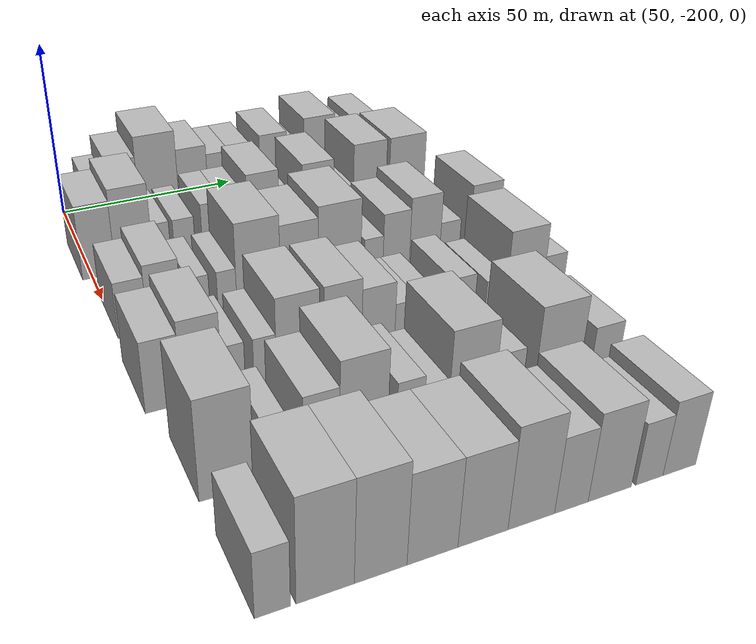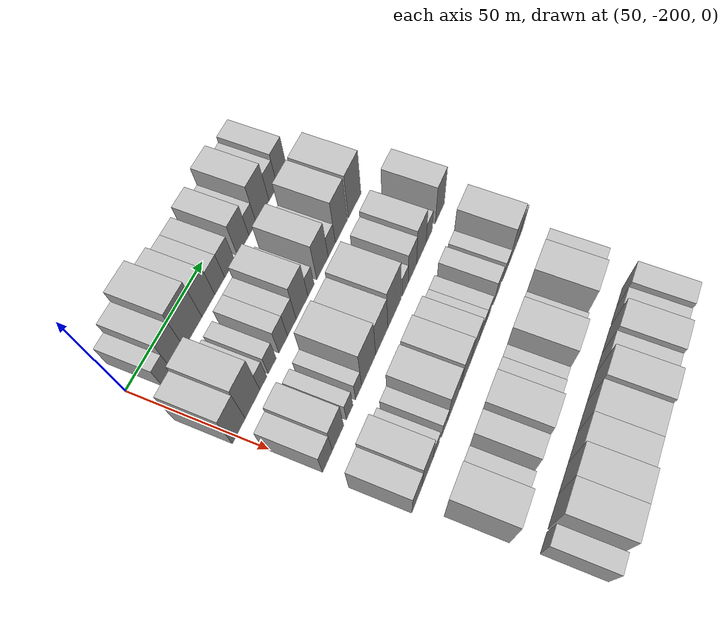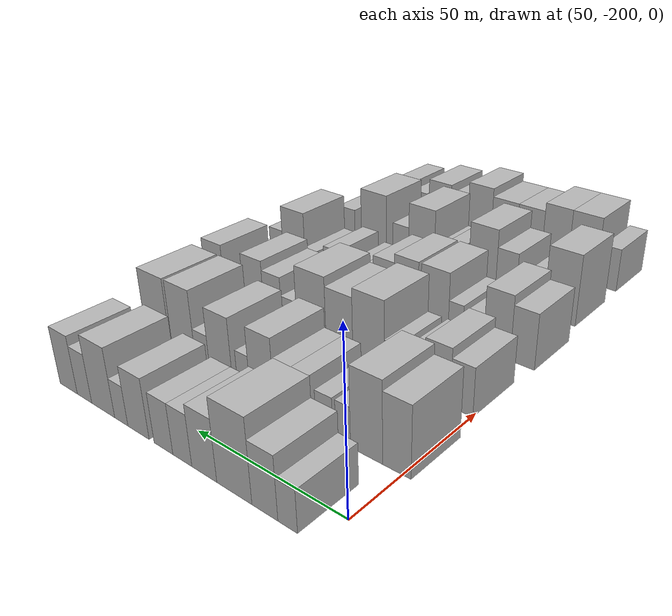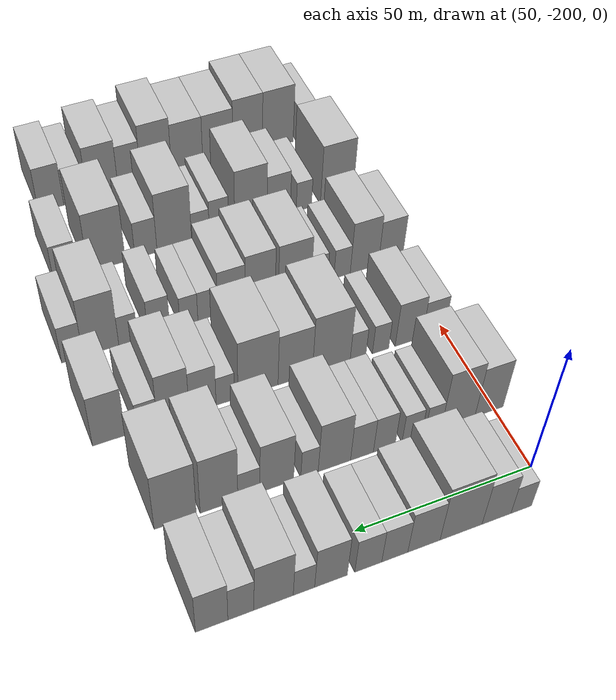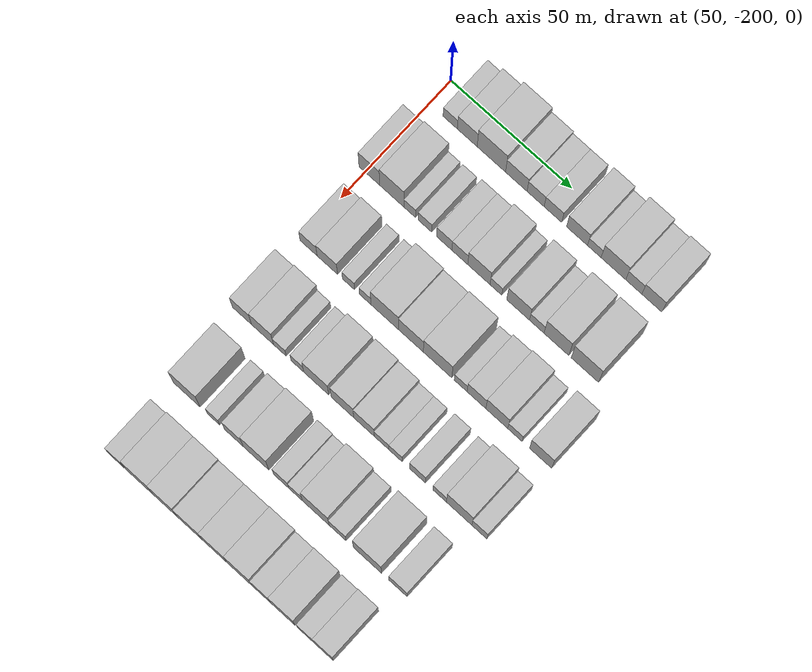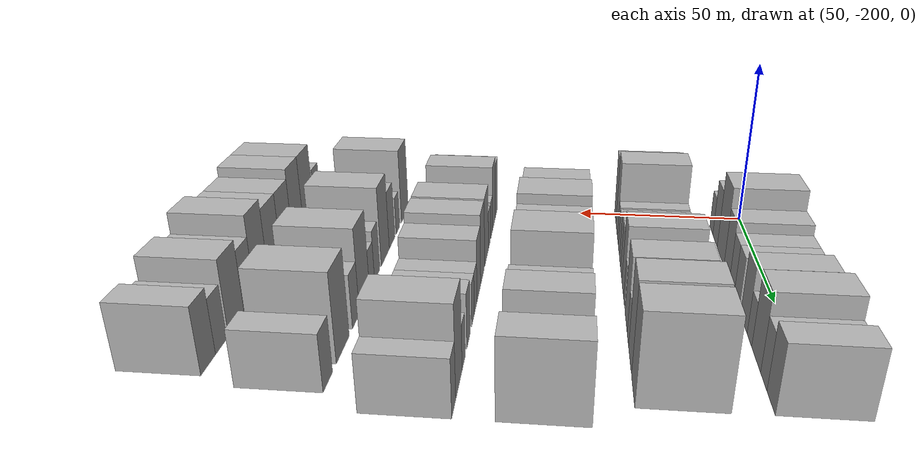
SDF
<sdf version="1.6">
 <world name="default">
  <model name="building_37">
   <static>1</static>
   <pose>50.0000 -191.3169 0 0.000000 0.000000 0.000000</pose>
   <link name="link">
    <pose>0 0 6.00 0 0 0</pose>
    <collision name="collision"><geometry><box><size>20.0000 5.9340 12.0000</size></box></geometry></collision>
    <visual name="visual">
     <cast_shadows>0</cast_shadows>
     <geometry><box><size>20.0000 5.9340 12.0000</size></box></geometry>
     <material>
      <script>
       <uri>model://HANNAS_wall/materials/scripts</uri>
       <uri>model://HANNAS_wall/materials/textures</uri>
       <name>vrc/HANNAS_wall</name>
      </script>
     </material>
    </visual>
   </link>
  </model>
  <model name="building_38">
   <static>1</static>
   <pose>50.0000 -184.2565 0 0.000000 0.000000 0.000000</pose>
   <link name="link">
    <pose>0 0 9.00 0 0 0</pose>
    <collision name="collision"><geometry><box><size>20.0000 8.1869 18.0000</size></box></geometry></collision>
    <visual name="visual">
     <cast_shadows>0</cast_shadows>
     <geometry><box><size>20.0000 8.1869 18.0000</size></box></geometry>
     <material>
      <script>
       <uri>model://HANNAS_wall/materials/scripts</uri>
       <uri>model://HANNAS_wall/materials/textures</uri>
       <name>vrc/HANNAS_wall</name>
      </script>
     </material>
    </visual>
   </link>
  </model>
  <model name="building_39">
   <static>1</static>
   <pose>50.0000 -174.2927 0 0.000000 0.000000 0.000000</pose>
   <link name="link">
    <pose>0 0 12.00 0 0 0</pose>
    <collision name="collision"><geometry><box><size>20.0000 11.7407 24.0000</size></box></geometry></collision>
    <visual name="visual">
     <cast_shadows>0</cast_shadows>
     <geometry><box><size>20.0000 11.7407 24.0000</size></box></geometry>
     <material>
      <script>
       <uri>model://HANNAS_wall/materials/scripts</uri>
       <uri>model://HANNAS_wall/materials/textures</uri>
       <name>vrc/HANNAS_wall</name>
      </script>
     </material>
    </visual>
   </link>
  </model>
  <model name="building_40">
   <static>1</static>
   <pose>50.0000 -163.9919 0 0.000000 0.000000 0.000000</pose>
   <link name="link">
    <pose>0 0 9.00 0 0 0</pose>
    <collision name="collision"><geometry><box><size>20.0000 8.8607 18.0000</size></box></geometry></collision>
    <visual name="visual">
     <cast_shadows>0</cast_shadows>
     <geometry><box><size>20.0000 8.8607 18.0000</size></box></geometry>
     <material>
      <script>
       <uri>model://HANNAS_wall/materials/scripts</uri>
       <uri>model://HANNAS_wall/materials/textures</uri>
       <name>vrc/HANNAS_wall</name>
      </script>
     </material>
    </visual>
   </link>
  </model>
  <model name="building_41">
   <static>1</static>
   <pose>50.0000 -156.0389 0 0.000000 0.000000 0.000000</pose>
   <link name="link">
    <pose>0 0 7.50 0 0 0</pose>
    <collision name="collision"><geometry><box><size>20.0000 7.0455 15.0000</size></box></geometry></collision>
    <visual name="visual">
     <cast_shadows>0</cast_shadows>
     <geometry><box><size>20.0000 7.0455 15.0000</size></box></geometry>
     <material>
      <script>
       <uri>model://HANNAS_wall/materials/scripts</uri>
       <uri>model://HANNAS_wall/materials/textures</uri>
       <name>vrc/HANNAS_wall</name>
      </script>
     </material>
    </visual>
   </link>
  </model>
  <model name="building_42">
   <static>1</static>
   <pose>50.0000 -148.9037 0 0.000000 0.000000 0.000000</pose>
   <link name="link">
    <pose>0 0 7.50 0 0 0</pose>
    <collision name="collision"><geometry><box><size>20.0000 7.2249 15.0000</size></box></geometry></collision>
    <visual name="visual">
     <cast_shadows>0</cast_shadows>
     <geometry><box><size>20.0000 7.2249 15.0000</size></box></geometry>
     <material>
      <script>
       <uri>model://HANNAS_wall/materials/scripts</uri>
       <uri>model://HANNAS_wall/materials/textures</uri>
       <name>vrc/HANNAS_wall</name>
      </script>
     </material>
    </visual>
   </link>
  </model>
  <model name="building_43">
   <static>1</static>
   <pose>50.0000 -138.9900 0 0.000000 0.000000 0.000000</pose>
   <link name="link">
    <pose>0 0 9.00 0 0 0</pose>
    <collision name="collision"><geometry><box><size>20.0000 8.6024 18.0000</size></box></geometry></collision>
    <visual name="visual">
     <cast_shadows>0</cast_shadows>
     <geometry><box><size>20.0000 8.6024 18.0000</size></box></geometry>
     <material>
      <script>
       <uri>model://HANNAS_wall/materials/scripts</uri>
       <uri>model://HANNAS_wall/materials/textures</uri>
       <name>vrc/HANNAS_wall</name>
      </script>
     </material>
    </visual>
   </link>
  </model>
  <model name="building_44">
   <static>1</static>
   <pose>50.0000 -131.9040 0 0.000000 0.000000 0.000000</pose>
   <link name="link">
    <pose>0 0 6.00 0 0 0</pose>
    <collision name="collision"><geometry><box><size>20.0000 5.5696 12.0000</size></box></geometry></collision>
    <visual name="visual">
     <cast_shadows>0</cast_shadows>
     <geometry><box><size>20.0000 5.5696 12.0000</size></box></geometry>
     <material>
      <script>
       <uri>model://HANNAS_wall/materials/scripts</uri>
       <uri>model://HANNAS_wall/materials/textures</uri>
       <name>vrc/HANNAS_wall</name>
      </script>
     </material>
    </visual>
   </link>
  </model>
  <model name="building_45">
   <static>1</static>
   <pose>50.0000 -124.0716 0 0.000000 0.000000 0.000000</pose>
   <link name="link">
    <pose>0 0 10.50 0 0 0</pose>
    <collision name="collision"><geometry><box><size>20.0000 10.0952 21.0000</size></box></geometry></collision>
    <visual name="visual">
     <cast_shadows>0</cast_shadows>
     <geometry><box><size>20.0000 10.0952 21.0000</size></box></geometry>
     <material>
      <script>
       <uri>model://HANNAS_wall/materials/scripts</uri>
       <uri>model://HANNAS_wall/materials/textures</uri>
       <name>vrc/HANNAS_wall</name>
      </script>
     </material>
    </visual>
   </link>
  </model>
  <model name="building_46">
   <static>1</static>
   <pose>50.0000 -115.7251 0 0.000000 0.000000 0.000000</pose>
   <link name="link">
    <pose>0 0 7.50 0 0 0</pose>
    <collision name="collision"><geometry><box><size>20.0000 6.5977 15.0000</size></box></geometry></collision>
    <visual name="visual">
     <cast_shadows>0</cast_shadows>
     <geometry><box><size>20.0000 6.5977 15.0000</size></box></geometry>
     <material>
      <script>
       <uri>model://HANNAS_wall/materials/scripts</uri>
       <uri>model://HANNAS_wall/materials/textures</uri>
       <name>vrc/HANNAS_wall</name>
      </script>
     </material>
    </visual>
   </link>
  </model>
  <model name="building_47">
   <static>1</static>
   <pose>50.0000 -108.3571 0 0.000000 0.000000 0.000000</pose>
   <link name="link">
    <pose>0 0 9.00 0 0 0</pose>
    <collision name="collision"><geometry><box><size>20.0000 8.1383 18.0000</size></box></geometry></collision>
    <visual name="visual">
     <cast_shadows>0</cast_shadows>
     <geometry><box><size>20.0000 8.1383 18.0000</size></box></geometry>
     <material>
      <script>
       <uri>model://HANNAS_wall/materials/scripts</uri>
       <uri>model://HANNAS_wall/materials/textures</uri>
       <name>vrc/HANNAS_wall</name>
      </script>
     </material>
    </visual>
   </link>
  </model>
  <model name="building_156">
   <static>1</static>
   <pose>79.0000 -198.3102 0 0.000000 0.000000 0.000000</pose>
   <link name="link">
    <pose>0 0 10.50 0 0 0</pose>
    <collision name="collision"><geometry><box><size>20.0000 8.5785 21.0000</size></box></geometry></collision>
    <visual name="visual">
     <cast_shadows>0</cast_shadows>
     <geometry><box><size>20.0000 8.5785 21.0000</size></box></geometry>
     <material>
      <script>
       <uri>model://HANNAS_wall/materials/scripts</uri>
       <uri>model://HANNAS_wall/materials/textures</uri>
       <name>vrc/HANNAS_wall</name>
      </script>
     </material>
    </visual>
   </link>
  </model>
  <model name="building_157">
   <static>1</static>
   <pose>79.0000 -189.0015 0 0.000000 0.000000 0.000000</pose>
   <link name="link">
    <pose>0 0 12.00 0 0 0</pose>
    <collision name="collision"><geometry><box><size>20.0000 10.0389 24.0000</size></box></geometry></collision>
    <visual name="visual">
     <cast_shadows>0</cast_shadows>
     <geometry><box><size>20.0000 10.0389 24.0000</size></box></geometry>
     <material>
      <script>
       <uri>model://HANNAS_wall/materials/scripts</uri>
       <uri>model://HANNAS_wall/materials/textures</uri>
       <name>vrc/HANNAS_wall</name>
      </script>
     </material>
    </visual>
   </link>
  </model>
  <model name="building_158">
   <static>1</static>
   <pose>79.0000 -181.5739 0 0.000000 0.000000 0.000000</pose>
   <link name="link">
    <pose>0 0 6.00 0 0 0</pose>
    <collision name="collision"><geometry><box><size>20.0000 4.8164 12.0000</size></box></geometry></collision>
    <visual name="visual">
     <cast_shadows>0</cast_shadows>
     <geometry><box><size>20.0000 4.8164 12.0000</size></box></geometry>
     <material>
      <script>
       <uri>model://HANNAS_wall/materials/scripts</uri>
       <uri>model://HANNAS_wall/materials/textures</uri>
       <name>vrc/HANNAS_wall</name>
      </script>
     </material>
    </visual>
   </link>
  </model>
  <model name="building_159">
   <static>1</static>
   <pose>79.0000 -175.3167 0 0.000000 0.000000 0.000000</pose>
   <link name="link">
    <pose>0 0 6.00 0 0 0</pose>
    <collision name="collision"><geometry><box><size>20.0000 5.6981 12.0000</size></box></geometry></collision>
    <visual name="visual">
     <cast_shadows>0</cast_shadows>
     <geometry><box><size>20.0000 5.6981 12.0000</size></box></geometry>
     <material>
      <script>
       <uri>model://HANNAS_wall/materials/scripts</uri>
       <uri>model://HANNAS_wall/materials/textures</uri>
       <name>vrc/HANNAS_wall</name>
      </script>
     </material>
    </visual>
   </link>
  </model>
  <model name="building_160">
   <static>1</static>
   <pose>79.0000 -167.3149 0 0.000000 0.000000 0.000000</pose>
   <link name="link">
    <pose>0 0 7.50 0 0 0</pose>
    <collision name="collision"><geometry><box><size>20.0000 6.3054 15.0000</size></box></geometry></collision>
    <visual name="visual">
     <cast_shadows>0</cast_shadows>
     <geometry><box><size>20.0000 6.3054 15.0000</size></box></geometry>
     <material>
      <script>
       <uri>model://HANNAS_wall/materials/scripts</uri>
       <uri>model://HANNAS_wall/materials/textures</uri>
       <name>vrc/HANNAS_wall</name>
      </script>
     </material>
    </visual>
   </link>
  </model>
  <model name="building_161">
   <static>1</static>
   <pose>79.0000 -160.9013 0 0.000000 0.000000 0.000000</pose>
   <link name="link">
    <pose>0 0 7.50 0 0 0</pose>
    <collision name="collision"><geometry><box><size>20.0000 6.5218 15.0000</size></box></geometry></collision>
    <visual name="visual">
     <cast_shadows>0</cast_shadows>
     <geometry><box><size>20.0000 6.5218 15.0000</size></box></geometry>
     <material>
      <script>
       <uri>model://HANNAS_wall/materials/scripts</uri>
       <uri>model://HANNAS_wall/materials/textures</uri>
       <name>vrc/HANNAS_wall</name>
      </script>
     </material>
    </visual>
   </link>
  </model>
  <model name="building_162">
   <static>1</static>
   <pose>79.0000 -153.0652 0 0.000000 0.000000 0.000000</pose>
   <link name="link">
    <pose>0 0 10.50 0 0 0</pose>
    <collision name="collision"><geometry><box><size>20.0000 9.1506 21.0000</size></box></geometry></collision>
    <visual name="visual">
     <cast_shadows>0</cast_shadows>
     <geometry><box><size>20.0000 9.1506 21.0000</size></box></geometry>
     <material>
      <script>
       <uri>model://HANNAS_wall/materials/scripts</uri>
       <uri>model://HANNAS_wall/materials/textures</uri>
       <name>vrc/HANNAS_wall</name>
      </script>
     </material>
    </visual>
   </link>
  </model>
  <model name="building_163">
   <static>1</static>
   <pose>79.0000 -146.0640 0 0.000000 0.000000 0.000000</pose>
   <link name="link">
    <pose>0 0 6.00 0 0 0</pose>
    <collision name="collision"><geometry><box><size>20.0000 4.8518 12.0000</size></box></geometry></collision>
    <visual name="visual">
     <cast_shadows>0</cast_shadows>
     <geometry><box><size>20.0000 4.8518 12.0000</size></box></geometry>
     <material>
      <script>
       <uri>model://HANNAS_wall/materials/scripts</uri>
       <uri>model://HANNAS_wall/materials/textures</uri>
       <name>vrc/HANNAS_wall</name>
      </script>
     </material>
    </visual>
   </link>
  </model>
  <model name="building_164">
   <static>1</static>
   <pose>79.0000 -136.9582 0 0.000000 0.000000 0.000000</pose>
   <link name="link">
    <pose>0 0 10.50 0 0 0</pose>
    <collision name="collision"><geometry><box><size>20.0000 9.3598 21.0000</size></box></geometry></collision>
    <visual name="visual">
     <cast_shadows>0</cast_shadows>
     <geometry><box><size>20.0000 9.3598 21.0000</size></box></geometry>
     <material>
      <script>
       <uri>model://HANNAS_wall/materials/scripts</uri>
       <uri>model://HANNAS_wall/materials/textures</uri>
       <name>vrc/HANNAS_wall</name>
      </script>
     </material>
    </visual>
   </link>
  </model>
  <model name="building_165">
   <static>1</static>
   <pose>79.0000 -129.3023 0 0.000000 0.000000 0.000000</pose>
   <link name="link">
    <pose>0 0 6.00 0 0 0</pose>
    <collision name="collision"><geometry><box><size>20.0000 5.9519 12.0000</size></box></geometry></collision>
    <visual name="visual">
     <cast_shadows>0</cast_shadows>
     <geometry><box><size>20.0000 5.9519 12.0000</size></box></geometry>
     <material>
      <script>
       <uri>model://HANNAS_wall/materials/scripts</uri>
       <uri>model://HANNAS_wall/materials/textures</uri>
       <name>vrc/HANNAS_wall</name>
      </script>
     </material>
    </visual>
   </link>
  </model>
  <model name="building_166">
   <static>1</static>
   <pose>79.0000 -121.2718 0 0.000000 0.000000 0.000000</pose>
   <link name="link">
    <pose>0 0 12.00 0 0 0</pose>
    <collision name="collision"><geometry><box><size>20.0000 10.1091 24.0000</size></box></geometry></collision>
    <visual name="visual">
     <cast_shadows>0</cast_shadows>
     <geometry><box><size>20.0000 10.1091 24.0000</size></box></geometry>
     <material>
      <script>
       <uri>model://HANNAS_wall/materials/scripts</uri>
       <uri>model://HANNAS_wall/materials/textures</uri>
       <name>vrc/HANNAS_wall</name>
      </script>
     </material>
    </visual>
   </link>
  </model>
  <model name="building_167">
   <static>1</static>
   <pose>79.0000 -109.6367 0 0.000000 0.000000 0.000000</pose>
   <link name="link">
    <pose>0 0 12.00 0 0 0</pose>
    <collision name="collision"><geometry><box><size>20.0000 11.1611 24.0000</size></box></geometry></collision>
    <visual name="visual">
     <cast_shadows>0</cast_shadows>
     <geometry><box><size>20.0000 11.1611 24.0000</size></box></geometry>
     <material>
      <script>
       <uri>model://HANNAS_wall/materials/scripts</uri>
       <uri>model://HANNAS_wall/materials/textures</uri>
       <name>vrc/HANNAS_wall</name>
      </script>
     </material>
    </visual>
   </link>
  </model>
  <model name="building_265">
   <static>1</static>
   <pose>108.0000 -196.7935 0 0.000000 0.000000 0.000000</pose>
   <link name="link">
    <pose>0 0 7.50 0 0 0</pose>
    <collision name="collision"><geometry><box><size>20.0000 7.0840 15.0000</size></box></geometry></collision>
    <visual name="visual">
     <cast_shadows>0</cast_shadows>
     <geometry><box><size>20.0000 7.0840 15.0000</size></box></geometry>
     <material>
      <script>
       <uri>model://HANNAS_wall/materials/scripts</uri>
       <uri>model://HANNAS_wall/materials/textures</uri>
       <name>vrc/HANNAS_wall</name>
      </script>
     </material>
    </visual>
   </link>
  </model>
  <model name="building_266">
   <static>1</static>
   <pose>108.0000 -189.0251 0 0.000000 0.000000 0.000000</pose>
   <link name="link">
    <pose>0 0 9.00 0 0 0</pose>
    <collision name="collision"><geometry><box><size>20.0000 8.4528 18.0000</size></box></geometry></collision>
    <visual name="visual">
     <cast_shadows>0</cast_shadows>
     <geometry><box><size>20.0000 8.4528 18.0000</size></box></geometry>
     <material>
      <script>
       <uri>model://HANNAS_wall/materials/scripts</uri>
       <uri>model://HANNAS_wall/materials/textures</uri>
       <name>vrc/HANNAS_wall</name>
      </script>
     </material>
    </visual>
   </link>
  </model>
  <model name="building_267">
   <static>1</static>
   <pose>108.0000 -180.2913 0 0.000000 0.000000 0.000000</pose>
   <link name="link">
    <pose>0 0 6.00 0 0 0</pose>
    <collision name="collision"><geometry><box><size>20.0000 5.0148 12.0000</size></box></geometry></collision>
    <visual name="visual">
     <cast_shadows>0</cast_shadows>
     <geometry><box><size>20.0000 5.0148 12.0000</size></box></geometry>
     <material>
      <script>
       <uri>model://HANNAS_wall/materials/scripts</uri>
       <uri>model://HANNAS_wall/materials/textures</uri>
       <name>vrc/HANNAS_wall</name>
      </script>
     </material>
    </visual>
   </link>
  </model>
  <model name="building_268">
   <static>1</static>
   <pose>108.0000 -173.3798 0 0.000000 0.000000 0.000000</pose>
   <link name="link">
    <pose>0 0 6.00 0 0 0</pose>
    <collision name="collision"><geometry><box><size>20.0000 4.8082 12.0000</size></box></geometry></collision>
    <visual name="visual">
     <cast_shadows>0</cast_shadows>
     <geometry><box><size>20.0000 4.8082 12.0000</size></box></geometry>
     <material>
      <script>
       <uri>model://HANNAS_wall/materials/scripts</uri>
       <uri>model://HANNAS_wall/materials/textures</uri>
       <name>vrc/HANNAS_wall</name>
      </script>
     </material>
    </visual>
   </link>
  </model>
  <model name="building_269">
   <static>1</static>
   <pose>108.0000 -165.3052 0 0.000000 0.000000 0.000000</pose>
   <link name="link">
    <pose>0 0 12.00 0 0 0</pose>
    <collision name="collision"><geometry><box><size>20.0000 11.3411 24.0000</size></box></geometry></collision>
    <visual name="visual">
     <cast_shadows>0</cast_shadows>
     <geometry><box><size>20.0000 11.3411 24.0000</size></box></geometry>
     <material>
      <script>
       <uri>model://HANNAS_wall/materials/scripts</uri>
       <uri>model://HANNAS_wall/materials/textures</uri>
       <name>vrc/HANNAS_wall</name>
      </script>
     </material>
    </visual>
   </link>
  </model>
  <model name="building_270">
   <static>1</static>
   <pose>108.0000 -154.5381 0 0.000000 0.000000 0.000000</pose>
   <link name="link">
    <pose>0 0 10.50 0 0 0</pose>
    <collision name="collision"><geometry><box><size>20.0000 10.1931 21.0000</size></box></geometry></collision>
    <visual name="visual">
     <cast_shadows>0</cast_shadows>
     <geometry><box><size>20.0000 10.1931 21.0000</size></box></geometry>
     <material>
      <script>
       <uri>model://HANNAS_wall/materials/scripts</uri>
       <uri>model://HANNAS_wall/materials/textures</uri>
       <name>vrc/HANNAS_wall</name>
      </script>
     </material>
    </visual>
   </link>
  </model>
  <model name="building_271">
   <static>1</static>
   <pose>108.0000 -143.6039 0 0.000000 0.000000 0.000000</pose>
   <link name="link">
    <pose>0 0 12.00 0 0 0</pose>
    <collision name="collision"><geometry><box><size>20.0000 11.6751 24.0000</size></box></geometry></collision>
    <visual name="visual">
     <cast_shadows>0</cast_shadows>
     <geometry><box><size>20.0000 11.6751 24.0000</size></box></geometry>
     <material>
      <script>
       <uri>model://HANNAS_wall/materials/scripts</uri>
       <uri>model://HANNAS_wall/materials/textures</uri>
       <name>vrc/HANNAS_wall</name>
      </script>
     </material>
    </visual>
   </link>
  </model>
  <model name="building_272">
   <static>1</static>
   <pose>108.0000 -134.1291 0 0.000000 0.000000 0.000000</pose>
   <link name="link">
    <pose>0 0 6.00 0 0 0</pose>
    <collision name="collision"><geometry><box><size>20.0000 5.2745 12.0000</size></box></geometry></collision>
    <visual name="visual">
     <cast_shadows>0</cast_shadows>
     <geometry><box><size>20.0000 5.2745 12.0000</size></box></geometry>
     <material>
      <script>
       <uri>model://HANNAS_wall/materials/scripts</uri>
       <uri>model://HANNAS_wall/materials/textures</uri>
       <name>vrc/HANNAS_wall</name>
      </script>
     </material>
    </visual>
   </link>
  </model>
  <model name="building_273">
   <static>1</static>
   <pose>108.0000 -127.6680 0 0.000000 0.000000 0.000000</pose>
   <link name="link">
    <pose>0 0 9.00 0 0 0</pose>
    <collision name="collision"><geometry><box><size>20.0000 7.6477 18.0000</size></box></geometry></collision>
    <visual name="visual">
     <cast_shadows>0</cast_shadows>
     <geometry><box><size>20.0000 7.6477 18.0000</size></box></geometry>
     <material>
      <script>
       <uri>model://HANNAS_wall/materials/scripts</uri>
       <uri>model://HANNAS_wall/materials/textures</uri>
       <name>vrc/HANNAS_wall</name>
      </script>
     </material>
    </visual>
   </link>
  </model>
  <model name="building_274">
   <static>1</static>
   <pose>108.0000 -119.3740 0 0.000000 0.000000 0.000000</pose>
   <link name="link">
    <pose>0 0 10.50 0 0 0</pose>
    <collision name="collision"><geometry><box><size>20.0000 8.9403 21.0000</size></box></geometry></collision>
    <visual name="visual">
     <cast_shadows>0</cast_shadows>
     <geometry><box><size>20.0000 8.9403 21.0000</size></box></geometry>
     <material>
      <script>
       <uri>model://HANNAS_wall/materials/scripts</uri>
       <uri>model://HANNAS_wall/materials/textures</uri>
       <name>vrc/HANNAS_wall</name>
      </script>
     </material>
    </visual>
   </link>
  </model>
  <model name="building_275">
   <static>1</static>
   <pose>108.0000 -111.9673 0 0.000000 0.000000 0.000000</pose>
   <link name="link">
    <pose>0 0 6.00 0 0 0</pose>
    <collision name="collision"><geometry><box><size>20.0000 5.8732 12.0000</size></box></geometry></collision>
    <visual name="visual">
     <cast_shadows>0</cast_shadows>
     <geometry><box><size>20.0000 5.8732 12.0000</size></box></geometry>
     <material>
      <script>
       <uri>model://HANNAS_wall/materials/scripts</uri>
       <uri>model://HANNAS_wall/materials/textures</uri>
       <name>vrc/HANNAS_wall</name>
      </script>
     </material>
    </visual>
   </link>
  </model>
  <model name="building_276">
   <static>1</static>
   <pose>108.0000 -101.5219 0 0.000000 0.000000 0.000000</pose>
   <link name="link">
    <pose>0 0 10.50 0 0 0</pose>
    <collision name="collision"><geometry><box><size>20.0000 9.0177 21.0000</size></box></geometry></collision>
    <visual name="visual">
     <cast_shadows>0</cast_shadows>
     <geometry><box><size>20.0000 9.0177 21.0000</size></box></geometry>
     <material>
      <script>
       <uri>model://HANNAS_wall/materials/scripts</uri>
       <uri>model://HANNAS_wall/materials/textures</uri>
       <name>vrc/HANNAS_wall</name>
      </script>
     </material>
    </visual>
   </link>
  </model>
  <model name="building_380">
   <static>1</static>
   <pose>137.0000 -197.5753 0 0.000000 0.000000 0.000000</pose>
   <link name="link">
    <pose>0 0 9.00 0 0 0</pose>
    <collision name="collision"><geometry><box><size>20.0000 7.9239 18.0000</size></box></geometry></collision>
    <visual name="visual">
     <cast_shadows>0</cast_shadows>
     <geometry><box><size>20.0000 7.9239 18.0000</size></box></geometry>
     <material>
      <script>
       <uri>model://HANNAS_wall/materials/scripts</uri>
       <uri>model://HANNAS_wall/materials/textures</uri>
       <name>vrc/HANNAS_wall</name>
      </script>
     </material>
    </visual>
   </link>
  </model>
  <model name="building_381">
   <static>1</static>
   <pose>137.0000 -189.0573 0 0.000000 0.000000 0.000000</pose>
   <link name="link">
    <pose>0 0 10.50 0 0 0</pose>
    <collision name="collision"><geometry><box><size>20.0000 9.1122 21.0000</size></box></geometry></collision>
    <visual name="visual">
     <cast_shadows>0</cast_shadows>
     <geometry><box><size>20.0000 9.1122 21.0000</size></box></geometry>
     <material>
      <script>
       <uri>model://HANNAS_wall/materials/scripts</uri>
       <uri>model://HANNAS_wall/materials/textures</uri>
       <name>vrc/HANNAS_wall</name>
      </script>
     </material>
    </visual>
   </link>
  </model>
  <model name="building_382">
   <static>1</static>
   <pose>137.0000 -181.8660 0 0.000000 0.000000 0.000000</pose>
   <link name="link">
    <pose>0 0 6.00 0 0 0</pose>
    <collision name="collision"><geometry><box><size>20.0000 5.2704 12.0000</size></box></geometry></collision>
    <visual name="visual">
     <cast_shadows>0</cast_shadows>
     <geometry><box><size>20.0000 5.2704 12.0000</size></box></geometry>
     <material>
      <script>
       <uri>model://HANNAS_wall/materials/scripts</uri>
       <uri>model://HANNAS_wall/materials/textures</uri>
       <name>vrc/HANNAS_wall</name>
      </script>
     </material>
    </visual>
   </link>
  </model>
  <model name="building_383">
   <static>1</static>
   <pose>137.0000 -174.6207 0 0.000000 0.000000 0.000000</pose>
   <link name="link">
    <pose>0 0 6.00 0 0 0</pose>
    <collision name="collision"><geometry><box><size>20.0000 5.2201 12.0000</size></box></geometry></collision>
    <visual name="visual">
     <cast_shadows>0</cast_shadows>
     <geometry><box><size>20.0000 5.2201 12.0000</size></box></geometry>
     <material>
      <script>
       <uri>model://HANNAS_wall/materials/scripts</uri>
       <uri>model://HANNAS_wall/materials/textures</uri>
       <name>vrc/HANNAS_wall</name>
      </script>
     </material>
    </visual>
   </link>
  </model>
  <model name="building_384">
   <static>1</static>
   <pose>137.0000 -166.8435 0 0.000000 0.000000 0.000000</pose>
   <link name="link">
    <pose>0 0 10.50 0 0 0</pose>
    <collision name="collision"><geometry><box><size>20.0000 10.3344 21.0000</size></box></geometry></collision>
    <visual name="visual">
     <cast_shadows>0</cast_shadows>
     <geometry><box><size>20.0000 10.3344 21.0000</size></box></geometry>
     <material>
      <script>
       <uri>model://HANNAS_wall/materials/scripts</uri>
       <uri>model://HANNAS_wall/materials/textures</uri>
       <name>vrc/HANNAS_wall</name>
      </script>
     </material>
    </visual>
   </link>
  </model>
  <model name="building_385">
   <static>1</static>
   <pose>137.0000 -156.0325 0 0.000000 0.000000 0.000000</pose>
   <link name="link">
    <pose>0 0 10.50 0 0 0</pose>
    <collision name="collision"><geometry><box><size>20.0000 9.2875 21.0000</size></box></geometry></collision>
    <visual name="visual">
     <cast_shadows>0</cast_shadows>
     <geometry><box><size>20.0000 9.2875 21.0000</size></box></geometry>
     <material>
      <script>
       <uri>model://HANNAS_wall/materials/scripts</uri>
       <uri>model://HANNAS_wall/materials/textures</uri>
       <name>vrc/HANNAS_wall</name>
      </script>
     </material>
    </visual>
   </link>
  </model>
  <model name="building_386">
   <static>1</static>
   <pose>137.0000 -147.1787 0 0.000000 0.000000 0.000000</pose>
   <link name="link">
    <pose>0 0 9.00 0 0 0</pose>
    <collision name="collision"><geometry><box><size>20.0000 8.4201 18.0000</size></box></geometry></collision>
    <visual name="visual">
     <cast_shadows>0</cast_shadows>
     <geometry><box><size>20.0000 8.4201 18.0000</size></box></geometry>
     <material>
      <script>
       <uri>model://HANNAS_wall/materials/scripts</uri>
       <uri>model://HANNAS_wall/materials/textures</uri>
       <name>vrc/HANNAS_wall</name>
      </script>
     </material>
    </visual>
   </link>
  </model>
  <model name="building_387">
   <static>1</static>
   <pose>137.0000 -139.9755 0 0.000000 0.000000 0.000000</pose>
   <link name="link">
    <pose>0 0 6.00 0 0 0</pose>
    <collision name="collision"><geometry><box><size>20.0000 5.9864 12.0000</size></box></geometry></collision>
    <visual name="visual">
     <cast_shadows>0</cast_shadows>
     <geometry><box><size>20.0000 5.9864 12.0000</size></box></geometry>
     <material>
      <script>
       <uri>model://HANNAS_wall/materials/scripts</uri>
       <uri>model://HANNAS_wall/materials/textures</uri>
       <name>vrc/HANNAS_wall</name>
      </script>
     </material>
    </visual>
   </link>
  </model>
  <model name="building_388">
   <static>1</static>
   <pose>137.0000 -134.3018 0 0.000000 0.000000 0.000000</pose>
   <link name="link">
    <pose>0 0 6.00 0 0 0</pose>
    <collision name="collision"><geometry><box><size>20.0000 5.3609 12.0000</size></box></geometry></collision>
    <visual name="visual">
     <cast_shadows>0</cast_shadows>
     <geometry><box><size>20.0000 5.3609 12.0000</size></box></geometry>
     <material>
      <script>
       <uri>model://HANNAS_wall/materials/scripts</uri>
       <uri>model://HANNAS_wall/materials/textures</uri>
       <name>vrc/HANNAS_wall</name>
      </script>
     </material>
    </visual>
   </link>
  </model>
  <model name="building_389">
   <static>1</static>
   <pose>137.0000 -125.3443 0 0.000000 0.000000 0.000000</pose>
   <link name="link">
    <pose>0 0 7.50 0 0 0</pose>
    <collision name="collision"><geometry><box><size>20.0000 6.5542 15.0000</size></box></geometry></collision>
    <visual name="visual">
     <cast_shadows>0</cast_shadows>
     <geometry><box><size>20.0000 6.5542 15.0000</size></box></geometry>
     <material>
      <script>
       <uri>model://HANNAS_wall/materials/scripts</uri>
       <uri>model://HANNAS_wall/materials/textures</uri>
       <name>vrc/HANNAS_wall</name>
      </script>
     </material>
    </visual>
   </link>
  </model>
  <model name="building_390">
   <static>1</static>
   <pose>137.0000 -116.2924 0 0.000000 0.000000 0.000000</pose>
   <link name="link">
    <pose>0 0 6.00 0 0 0</pose>
    <collision name="collision"><geometry><box><size>20.0000 5.5497 12.0000</size></box></geometry></collision>
    <visual name="visual">
     <cast_shadows>0</cast_shadows>
     <geometry><box><size>20.0000 5.5497 12.0000</size></box></geometry>
     <material>
      <script>
       <uri>model://HANNAS_wall/materials/scripts</uri>
       <uri>model://HANNAS_wall/materials/textures</uri>
       <name>vrc/HANNAS_wall</name>
      </script>
     </material>
    </visual>
   </link>
  </model>
  <model name="building_391">
   <static>1</static>
   <pose>137.0000 -108.3252 0 0.000000 0.000000 0.000000</pose>
   <link name="link">
    <pose>0 0 12.00 0 0 0</pose>
    <collision name="collision"><geometry><box><size>20.0000 10.3846 24.0000</size></box></geometry></collision>
    <visual name="visual">
     <cast_shadows>0</cast_shadows>
     <geometry><box><size>20.0000 10.3846 24.0000</size></box></geometry>
     <material>
      <script>
       <uri>model://HANNAS_wall/materials/scripts</uri>
       <uri>model://HANNAS_wall/materials/textures</uri>
       <name>vrc/HANNAS_wall</name>
      </script>
     </material>
    </visual>
   </link>
  </model>
  <model name="building_392">
   <static>1</static>
   <pose>137.0000 -100.0936 0 0.000000 0.000000 0.000000</pose>
   <link name="link">
    <pose>0 0 7.50 0 0 0</pose>
    <collision name="collision"><geometry><box><size>20.0000 6.0785 15.0000</size></box></geometry></collision>
    <visual name="visual">
     <cast_shadows>0</cast_shadows>
     <geometry><box><size>20.0000 6.0785 15.0000</size></box></geometry>
     <material>
      <script>
       <uri>model://HANNAS_wall/materials/scripts</uri>
       <uri>model://HANNAS_wall/materials/textures</uri>
       <name>vrc/HANNAS_wall</name>
      </script>
     </material>
    </visual>
   </link>
  </model>
  <model name="building_490">
   <static>1</static>
   <pose>166.0000 -193.3771 0 0.000000 0.000000 0.000000</pose>
   <link name="link">
    <pose>0 0 12.00 0 0 0</pose>
    <collision name="collision"><geometry><box><size>20.0000 11.0258 24.0000</size></box></geometry></collision>
    <visual name="visual">
     <cast_shadows>0</cast_shadows>
     <geometry><box><size>20.0000 11.0258 24.0000</size></box></geometry>
     <material>
      <script>
       <uri>model://HANNAS_wall/materials/scripts</uri>
       <uri>model://HANNAS_wall/materials/textures</uri>
       <name>vrc/HANNAS_wall</name>
      </script>
     </material>
    </visual>
   </link>
  </model>
  <model name="building_491">
   <static>1</static>
   <pose>166.0000 -182.3055 0 0.000000 0.000000 0.000000</pose>
   <link name="link">
    <pose>0 0 6.00 0 0 0</pose>
    <collision name="collision"><geometry><box><size>20.0000 5.1174 12.0000</size></box></geometry></collision>
    <visual name="visual">
     <cast_shadows>0</cast_shadows>
     <geometry><box><size>20.0000 5.1174 12.0000</size></box></geometry>
     <material>
      <script>
       <uri>model://HANNAS_wall/materials/scripts</uri>
       <uri>model://HANNAS_wall/materials/textures</uri>
       <name>vrc/HANNAS_wall</name>
      </script>
     </material>
    </visual>
   </link>
  </model>
  <model name="building_492">
   <static>1</static>
   <pose>166.0000 -173.8939 0 0.000000 0.000000 0.000000</pose>
   <link name="link">
    <pose>0 0 9.00 0 0 0</pose>
    <collision name="collision"><geometry><box><size>20.0000 7.7059 18.0000</size></box></geometry></collision>
    <visual name="visual">
     <cast_shadows>0</cast_shadows>
     <geometry><box><size>20.0000 7.7059 18.0000</size></box></geometry>
     <material>
      <script>
       <uri>model://HANNAS_wall/materials/scripts</uri>
       <uri>model://HANNAS_wall/materials/textures</uri>
       <name>vrc/HANNAS_wall</name>
      </script>
     </material>
    </visual>
   </link>
  </model>
  <model name="building_493">
   <static>1</static>
   <pose>166.0000 -164.7880 0 0.000000 0.000000 0.000000</pose>
   <link name="link">
    <pose>0 0 12.00 0 0 0</pose>
    <collision name="collision"><geometry><box><size>20.0000 10.5058 24.0000</size></box></geometry></collision>
    <visual name="visual">
     <cast_shadows>0</cast_shadows>
     <geometry><box><size>20.0000 10.5058 24.0000</size></box></geometry>
     <material>
      <script>
       <uri>model://HANNAS_wall/materials/scripts</uri>
       <uri>model://HANNAS_wall/materials/textures</uri>
       <name>vrc/HANNAS_wall</name>
      </script>
     </material>
    </visual>
   </link>
  </model>
  <model name="building_494">
   <static>1</static>
   <pose>166.0000 -154.4493 0 0.000000 0.000000 0.000000</pose>
   <link name="link">
    <pose>0 0 7.50 0 0 0</pose>
    <collision name="collision"><geometry><box><size>20.0000 6.1717 15.0000</size></box></geometry></collision>
    <visual name="visual">
     <cast_shadows>0</cast_shadows>
     <geometry><box><size>20.0000 6.1717 15.0000</size></box></geometry>
     <material>
      <script>
       <uri>model://HANNAS_wall/materials/scripts</uri>
       <uri>model://HANNAS_wall/materials/textures</uri>
       <name>vrc/HANNAS_wall</name>
      </script>
     </material>
    </visual>
   </link>
  </model>
  <model name="building_495">
   <static>1</static>
   <pose>166.0000 -148.5220 0 0.000000 0.000000 0.000000</pose>
   <link name="link">
    <pose>0 0 6.00 0 0 0</pose>
    <collision name="collision"><geometry><box><size>20.0000 5.6829 12.0000</size></box></geometry></collision>
    <visual name="visual">
     <cast_shadows>0</cast_shadows>
     <geometry><box><size>20.0000 5.6829 12.0000</size></box></geometry>
     <material>
      <script>
       <uri>model://HANNAS_wall/materials/scripts</uri>
       <uri>model://HANNAS_wall/materials/textures</uri>
       <name>vrc/HANNAS_wall</name>
      </script>
     </material>
    </visual>
   </link>
  </model>
  <model name="building_496">
   <static>1</static>
   <pose>166.0000 -140.2204 0 0.000000 0.000000 0.000000</pose>
   <link name="link">
    <pose>0 0 12.00 0 0 0</pose>
    <collision name="collision"><geometry><box><size>20.0000 10.9202 24.0000</size></box></geometry></collision>
    <visual name="visual">
     <cast_shadows>0</cast_shadows>
     <geometry><box><size>20.0000 10.9202 24.0000</size></box></geometry>
     <material>
      <script>
       <uri>model://HANNAS_wall/materials/scripts</uri>
       <uri>model://HANNAS_wall/materials/textures</uri>
       <name>vrc/HANNAS_wall</name>
      </script>
     </material>
    </visual>
   </link>
  </model>
  <model name="building_497">
   <static>1</static>
   <pose>166.0000 -131.3153 0 0.000000 0.000000 0.000000</pose>
   <link name="link">
    <pose>0 0 7.50 0 0 0</pose>
    <collision name="collision"><geometry><box><size>20.0000 6.8901 15.0000</size></box></geometry></collision>
    <visual name="visual">
     <cast_shadows>0</cast_shadows>
     <geometry><box><size>20.0000 6.8901 15.0000</size></box></geometry>
     <material>
      <script>
       <uri>model://HANNAS_wall/materials/scripts</uri>
       <uri>model://HANNAS_wall/materials/textures</uri>
       <name>vrc/HANNAS_wall</name>
      </script>
     </material>
    </visual>
   </link>
  </model>
  <model name="building_498">
   <static>1</static>
   <pose>166.0000 -119.1443 0 0.000000 0.000000 0.000000</pose>
   <link name="link">
    <pose>0 0 12.00 0 0 0</pose>
    <collision name="collision"><geometry><box><size>20.0000 11.4519 24.0000</size></box></geometry></collision>
    <visual name="visual">
     <cast_shadows>0</cast_shadows>
     <geometry><box><size>20.0000 11.4519 24.0000</size></box></geometry>
     <material>
      <script>
       <uri>model://HANNAS_wall/materials/scripts</uri>
       <uri>model://HANNAS_wall/materials/textures</uri>
       <name>vrc/HANNAS_wall</name>
      </script>
     </material>
    </visual>
   </link>
  </model>
  <model name="building_499">
   <static>1</static>
   <pose>166.0000 -106.7016 0 0.000000 0.000000 0.000000</pose>
   <link name="link">
    <pose>0 0 7.50 0 0 0</pose>
    <collision name="collision"><geometry><box><size>20.0000 7.4334 15.0000</size></box></geometry></collision>
    <visual name="visual">
     <cast_shadows>0</cast_shadows>
     <geometry><box><size>20.0000 7.4334 15.0000</size></box></geometry>
     <material>
      <script>
       <uri>model://HANNAS_wall/materials/scripts</uri>
       <uri>model://HANNAS_wall/materials/textures</uri>
       <name>vrc/HANNAS_wall</name>
      </script>
     </material>
    </visual>
   </link>
  </model>
  <model name="building_608">
   <static>1</static>
   <pose>195.0000 -195.3272 0 0.000000 0.000000 0.000000</pose>
   <link name="link">
    <pose>0 0 7.50 0 0 0</pose>
    <collision name="collision"><geometry><box><size>20.0000 6.4096 15.0000</size></box></geometry></collision>
    <visual name="visual">
     <cast_shadows>0</cast_shadows>
     <geometry><box><size>20.0000 6.4096 15.0000</size></box></geometry>
     <material>
      <script>
       <uri>model://HANNAS_wall/materials/scripts</uri>
       <uri>model://HANNAS_wall/materials/textures</uri>
       <name>vrc/HANNAS_wall</name>
      </script>
     </material>
    </visual>
   </link>
  </model>
  <model name="building_609">
   <static>1</static>
   <pose>195.0000 -185.7532 0 0.000000 0.000000 0.000000</pose>
   <link name="link">
    <pose>0 0 12.00 0 0 0</pose>
    <collision name="collision"><geometry><box><size>20.0000 10.7383 24.0000</size></box></geometry></collision>
    <visual name="visual">
     <cast_shadows>0</cast_shadows>
     <geometry><box><size>20.0000 10.7383 24.0000</size></box></geometry>
     <material>
      <script>
       <uri>model://HANNAS_wall/materials/scripts</uri>
       <uri>model://HANNAS_wall/materials/textures</uri>
       <name>vrc/HANNAS_wall</name>
      </script>
     </material>
    </visual>
   </link>
  </model>
  <model name="building_610">
   <static>1</static>
   <pose>195.0000 -175.3228 0 0.000000 0.000000 0.000000</pose>
   <link name="link">
    <pose>0 0 12.00 0 0 0</pose>
    <collision name="collision"><geometry><box><size>20.0000 10.1225 24.0000</size></box></geometry></collision>
    <visual name="visual">
     <cast_shadows>0</cast_shadows>
     <geometry><box><size>20.0000 10.1225 24.0000</size></box></geometry>
     <material>
      <script>
       <uri>model://HANNAS_wall/materials/scripts</uri>
       <uri>model://HANNAS_wall/materials/textures</uri>
       <name>vrc/HANNAS_wall</name>
      </script>
     </material>
    </visual>
   </link>
  </model>
  <model name="building_611">
   <static>1</static>
   <pose>195.0000 -165.1610 0 0.000000 0.000000 0.000000</pose>
   <link name="link">
    <pose>0 0 10.50 0 0 0</pose>
    <collision name="collision"><geometry><box><size>20.0000 10.2011 21.0000</size></box></geometry></collision>
    <visual name="visual">
     <cast_shadows>0</cast_shadows>
     <geometry><box><size>20.0000 10.2011 21.0000</size></box></geometry>
     <material>
      <script>
       <uri>model://HANNAS_wall/materials/scripts</uri>
       <uri>model://HANNAS_wall/materials/textures</uri>
       <name>vrc/HANNAS_wall</name>
      </script>
     </material>
    </visual>
   </link>
  </model>
  <model name="building_612">
   <static>1</static>
   <pose>195.0000 -154.8470 0 0.000000 0.000000 0.000000</pose>
   <link name="link">
    <pose>0 0 10.50 0 0 0</pose>
    <collision name="collision"><geometry><box><size>20.0000 10.4270 21.0000</size></box></geometry></collision>
    <visual name="visual">
     <cast_shadows>0</cast_shadows>
     <geometry><box><size>20.0000 10.4270 21.0000</size></box></geometry>
     <material>
      <script>
       <uri>model://HANNAS_wall/materials/scripts</uri>
       <uri>model://HANNAS_wall/materials/textures</uri>
       <name>vrc/HANNAS_wall</name>
      </script>
     </material>
    </visual>
   </link>
  </model>
  <model name="building_613">
   <static>1</static>
   <pose>195.0000 -144.5699 0 0.000000 0.000000 0.000000</pose>
   <link name="link">
    <pose>0 0 12.00 0 0 0</pose>
    <collision name="collision"><geometry><box><size>20.0000 10.1272 24.0000</size></box></geometry></collision>
    <visual name="visual">
     <cast_shadows>0</cast_shadows>
     <geometry><box><size>20.0000 10.1272 24.0000</size></box></geometry>
     <material>
      <script>
       <uri>model://HANNAS_wall/materials/scripts</uri>
       <uri>model://HANNAS_wall/materials/textures</uri>
       <name>vrc/HANNAS_wall</name>
      </script>
     </material>
    </visual>
   </link>
  </model>
  <model name="building_614">
   <static>1</static>
   <pose>195.0000 -135.7425 0 0.000000 0.000000 0.000000</pose>
   <link name="link">
    <pose>0 0 9.00 0 0 0</pose>
    <collision name="collision"><geometry><box><size>20.0000 7.5275 18.0000</size></box></geometry></collision>
    <visual name="visual">
     <cast_shadows>0</cast_shadows>
     <geometry><box><size>20.0000 7.5275 18.0000</size></box></geometry>
     <material>
      <script>
       <uri>model://HANNAS_wall/materials/scripts</uri>
       <uri>model://HANNAS_wall/materials/textures</uri>
       <name>vrc/HANNAS_wall</name>
      </script>
     </material>
    </visual>
   </link>
  </model>
  <model name="building_615">
   <static>1</static>
   <pose>195.0000 -126.9676 0 0.000000 0.000000 0.000000</pose>
   <link name="link">
    <pose>0 0 10.50 0 0 0</pose>
    <collision name="collision"><geometry><box><size>20.0000 10.0224 21.0000</size></box></geometry></collision>
    <visual name="visual">
     <cast_shadows>0</cast_shadows>
     <geometry><box><size>20.0000 10.0224 21.0000</size></box></geometry>
     <material>
      <script>
       <uri>model://HANNAS_wall/materials/scripts</uri>
       <uri>model://HANNAS_wall/materials/textures</uri>
       <name>vrc/HANNAS_wall</name>
      </script>
     </material>
    </visual>
   </link>
  </model>
  <model name="building_616">
   <static>1</static>
   <pose>195.0000 -117.6852 0 0.000000 0.000000 0.000000</pose>
   <link name="link">
    <pose>0 0 7.50 0 0 0</pose>
    <collision name="collision"><geometry><box><size>20.0000 6.5424 15.0000</size></box></geometry></collision>
    <visual name="visual">
     <cast_shadows>0</cast_shadows>
     <geometry><box><size>20.0000 6.5424 15.0000</size></box></geometry>
     <material>
      <script>
       <uri>model://HANNAS_wall/materials/scripts</uri>
       <uri>model://HANNAS_wall/materials/textures</uri>
       <name>vrc/HANNAS_wall</name>
      </script>
     </material>
    </visual>
   </link>
  </model>
  <model name="building_617">
   <static>1</static>
   <pose>195.0000 -110.3843 0 0.000000 0.000000 0.000000</pose>
   <link name="link">
    <pose>0 0 9.00 0 0 0</pose>
    <collision name="collision"><geometry><box><size>20.0000 8.0594 18.0000</size></box></geometry></collision>
    <visual name="visual">
     <cast_shadows>0</cast_shadows>
     <geometry><box><size>20.0000 8.0594 18.0000</size></box></geometry>
     <material>
      <script>
       <uri>model://HANNAS_wall/materials/scripts</uri>
       <uri>model://HANNAS_wall/materials/textures</uri>
       <name>vrc/HANNAS_wall</name>
      </script>
     </material>
    </visual>
   </link>
  </model>
 </world>
</sdf>
